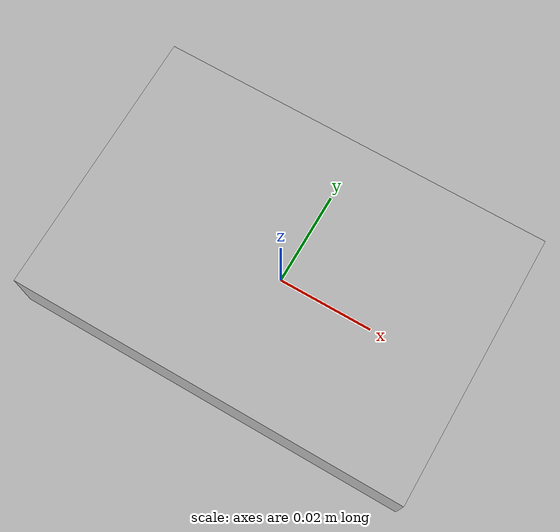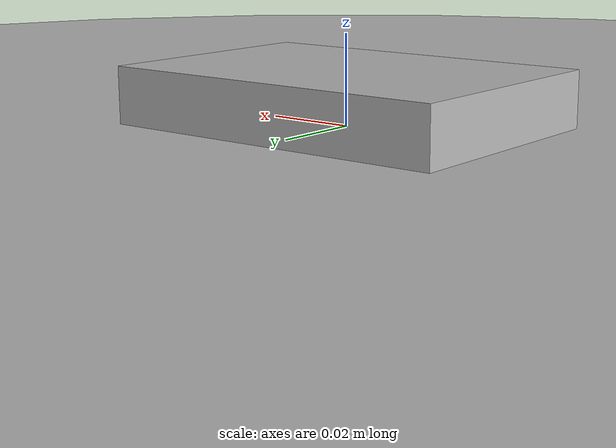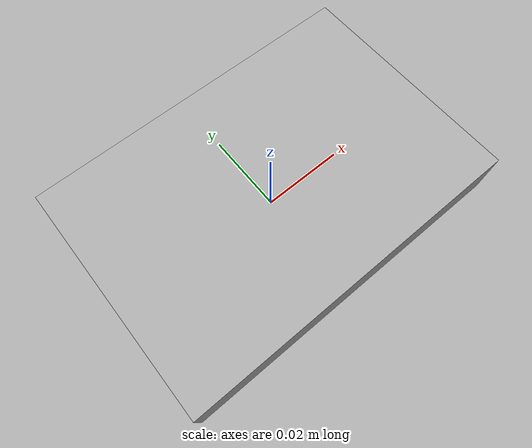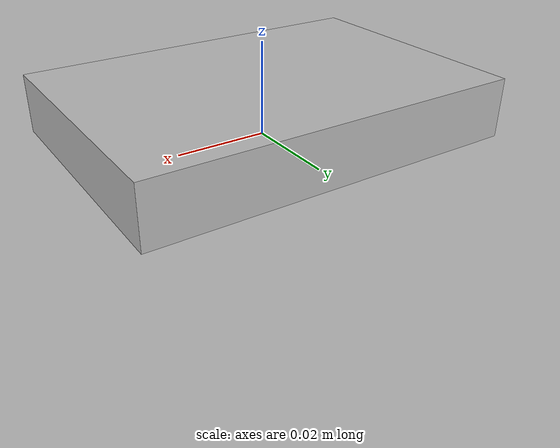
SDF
<sdf version='1.6'>
  <model name='lakitu'>
    <link name='base_link'>
      <pose frame=''>0 0 0 0 -0 0</pose>
      <inertial>
        <pose frame=''>0 0 -0.046134 0 -0 0</pose>
        <mass>1.7</mass>
        <inertia>
          <ixx>3.0003</ixx>
          <ixy>0</ixy>
          <ixz>0</ixz>
          <iyy>3.0003</iyy>
          <iyz>0</iyz>
          <izz>3</izz>
        </inertia>
      </inertial>
      <collision name='base_link_fixed_joint_lump__airframe_collision'>
        <pose frame=''>0 0 -0.0508 0 -0 0</pose>
        <geometry>
          <cylinder>
            <length>0.1016</length>
            <radius>0.254</radius>
          </cylinder>
        </geometry>
      </collision>
      <collision name='base_link_fixed_joint_lump__odroid_collision_1'>
        <pose frame=''>0 0 0 0 -0 0</pose>
        <geometry>
          <box>
            <size>0.08128 0.05588 0.0254</size>
          </box>
        </geometry>
      </collision>
      <collision name='base_link_fixed_joint_lump__pixracer_IMU_collision_2'>
        <pose frame=''>0 0 -0.022276 0 -0 0</pose>
        <geometry>
          <box>
            <size>0.03862 0.04486 0.01471</size>
          </box>
        </geometry>
      </collision>
      <visual name='base_link_visual'>
        <pose frame=''>0 0 0 0 -0 0</pose>
        <geometry>
          <box>
            <size>0.08128 0.05588 0.0254</size>
          </box>
        </geometry>
      </visual>
      <visual name='base_link_fixed_joint_lump__airframe_visual_1'>
        <pose frame=''>0 0 -0.0508 0 -0 0</pose>
        <geometry>
          <cylinder>
            <length>0.1016</length>
            <radius>0.254</radius>
          </cylinder>
        </geometry>
      </visual>
      <visual name='base_link_fixed_joint_lump__odroid_visual_2'>
        <pose frame=''>0 0 0 0 -0 0</pose>
        <geometry>
          <box>
            <size>0.08128 0.05588 0.0254</size>
          </box>
        </geometry>
      </visual>
      <visual name='base_link_fixed_joint_lump__pixracer_IMU_visual_3'>
        <pose frame=''>0 0 -0.044552 0 -0 0</pose>
        <geometry>
          <box>
            <size>0.03862 0.04486 0.01471</size>
          </box>
        </geometry>
      </visual>
    </link>

  </model>
</sdf>
